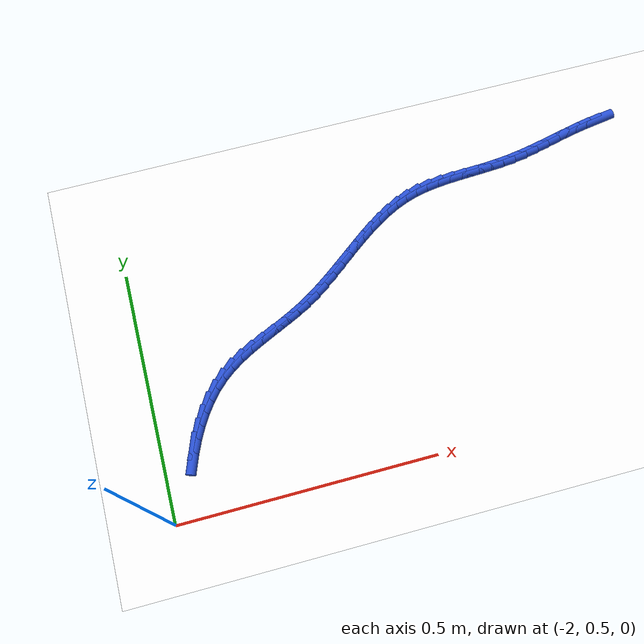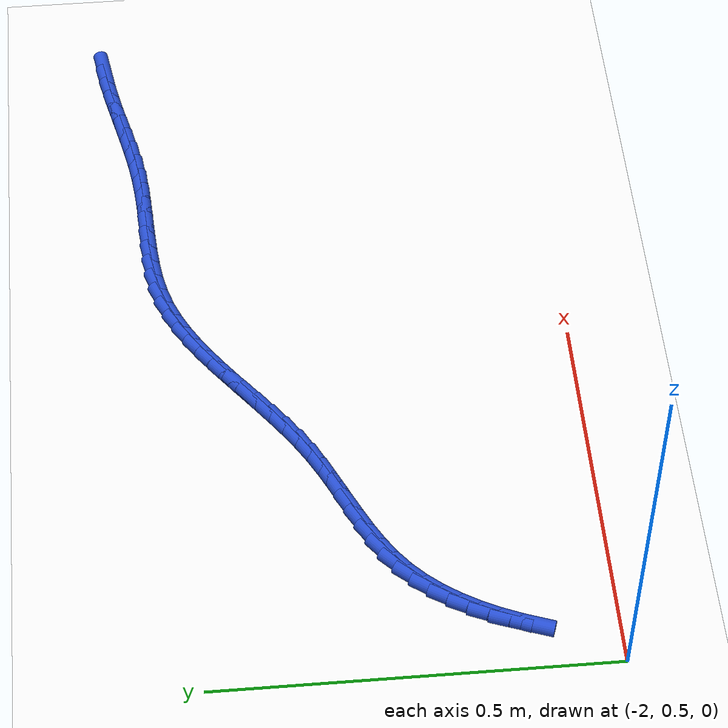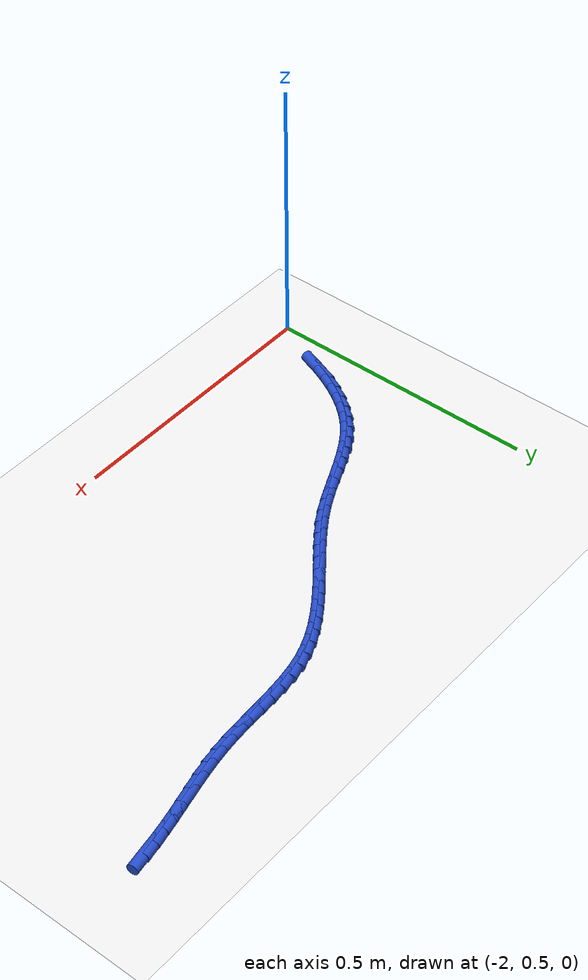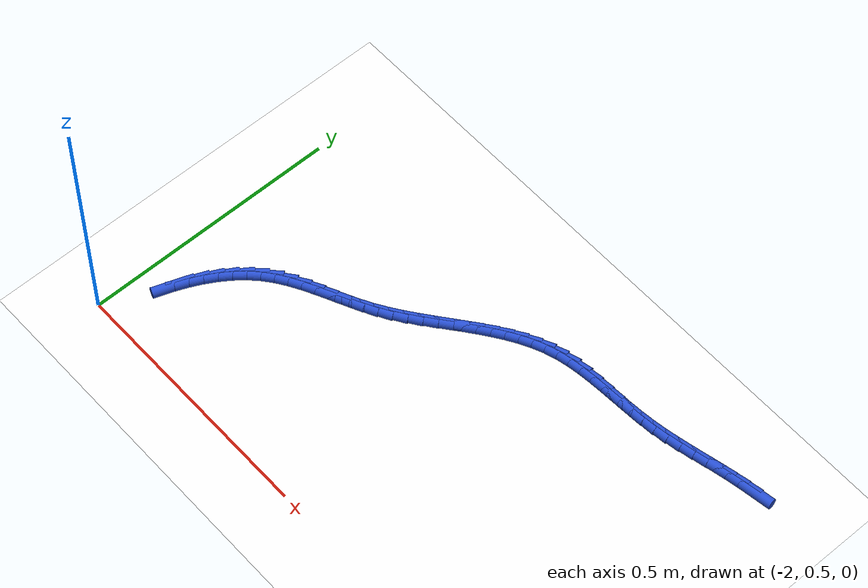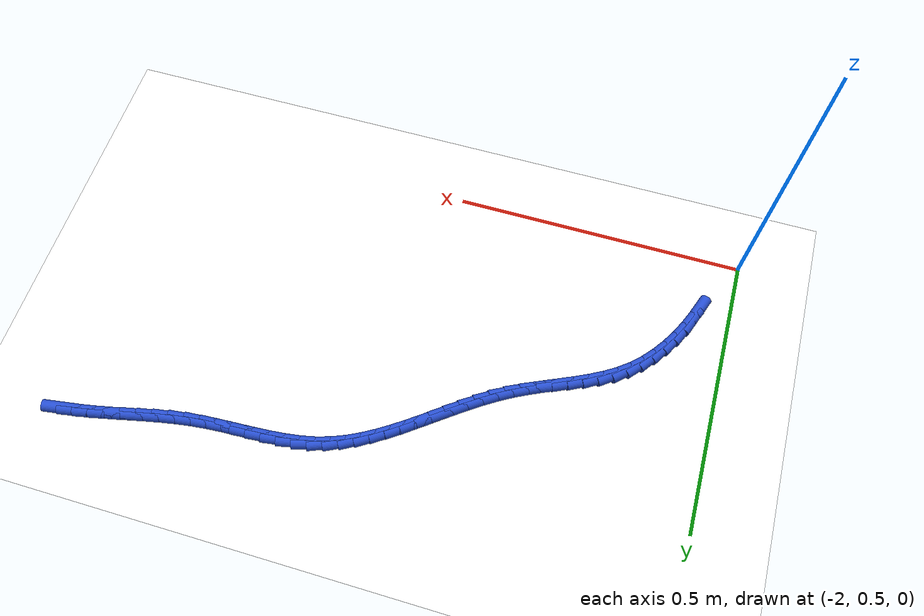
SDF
<sdf version="1.6">
 <world name="default">
  <model name="ground_plane">
   <static>1</static>
   <link name="link">
    <collision name="collision">
     <geometry><plane><normal>0 0 1</normal><size>100 100</size></plane></geometry>
     <surface><friction><ode><mu>100</mu><mu2>50</mu2></ode></friction></surface>
    </collision>
    <visual name="visual">
     <cast_shadows>0</cast_shadows>
     <geometry><plane><normal>0 0 1</normal><size>100 100</size></plane></geometry>
     <material>
      <script><uri>file://media/materials/scripts/gazebo.material</uri><name>Gazebo/WhiteGlow</name></script>
     </material>
    </visual>
   </link>
  </model>
  <model name="line">
   <link name="link_63">
    <pose>-0.9886689863616577 1.0856278593890523 0.01 0 1.57 0.15367585824851632</pose>
    <collision name="collision">
     <geometry><cylinder><radius>0.01</radius><length>0.08</length></cylinder></geometry>
    </collision>
    <visual name="visual">
     <material>
      <script><name>Gazebo/Blue</name><uri>file://media/materials/scripts/gazebo.material</uri></script>
     </material>
     <geometry><cylinder><radius>0.01</radius><length>0.08</length></cylinder></geometry>
    </visual>
   </link>
   <link name="link_64">
    <pose>-1.0137276543993818 1.0817463432120618 0.01 0 1.57 0.18965838416106814</pose>
    <collision name="collision">
     <geometry><cylinder><radius>0.01</radius><length>0.08</length></cylinder></geometry>
    </collision>
    <visual name="visual">
     <material>
      <script><name>Gazebo/Blue</name><uri>file://media/materials/scripts/gazebo.material</uri></script>
     </material>
     <geometry><cylinder><radius>0.01</radius><length>0.08</length></cylinder></geometry>
    </visual>
   </link>
   <link name="link_65">
    <pose>-1.0388682509993457 1.0769202132585929 0.01 0 1.57 0.21307552401293783</pose>
    <collision name="collision">
     <geometry><cylinder><radius>0.01</radius><length>0.08</length></cylinder></geometry>
    </collision>
    <visual name="visual">
     <material>
      <script><name>Gazebo/Blue</name><uri>file://media/materials/scripts/gazebo.material</uri></script>
     </material>
     <geometry><cylinder><radius>0.01</radius><length>0.08</length></cylinder></geometry>
    </visual>
   </link>
   <link name="link_66">
    <pose>-1.0641071666516015 1.0714595263205273 0.01 0 1.57 0.22433902805660094</pose>
    <collision name="collision">
     <geometry><cylinder><radius>0.01</radius><length>0.08</length></cylinder></geometry>
    </collision>
    <visual name="visual">
     <material>
      <script><name>Gazebo/Blue</name><uri>file://media/materials/scripts/gazebo.material</uri></script>
     </material>
     <geometry><cylinder><radius>0.01</radius><length>0.08</length></cylinder></geometry>
    </visual>
   </link>
   <link name="link_67">
    <pose>-1.089460791846201 1.0656743391897456 0.01 0 1.57 0.22376192650550664</pose>
    <collision name="collision">
     <geometry><cylinder><radius>0.01</radius><length>0.08</length></cylinder></geometry>
    </collision>
    <visual name="visual">
     <material>
      <script><name>Gazebo/Blue</name><uri>file://media/materials/scripts/gazebo.material</uri></script>
     </material>
     <geometry><cylinder><radius>0.01</radius><length>0.08</length></cylinder></geometry>
    </visual>
   </link>
   <link name="link_68">
    <pose>-1.1149455170731952 1.0598747086581295 0.01 0 1.57 0.211518502137762</pose>
    <collision name="collision">
     <geometry><cylinder><radius>0.01</radius><length>0.08</length></cylinder></geometry>
    </collision>
    <visual name="visual">
     <material>
      <script><name>Gazebo/Blue</name><uri>file://media/materials/scripts/gazebo.material</uri></script>
     </material>
     <geometry><cylinder><radius>0.01</radius><length>0.08</length></cylinder></geometry>
    </visual>
   </link>
   <link name="link_69">
    <pose>-1.1405777328226372 1.0543706915175606 0.01 0 1.57 0.18765301356978514</pose>
    <collision name="collision">
     <geometry><cylinder><radius>0.01</radius><length>0.08</length></cylinder></geometry>
    </collision>
    <visual name="visual">
     <material>
      <script><name>Gazebo/Blue</name><uri>file://media/materials/scripts/gazebo.material</uri></script>
     </material>
     <geometry><cylinder><radius>0.01</radius><length>0.08</length></cylinder></geometry>
    </visual>
   </link>
   <link name="link_70">
    <pose>-1.166373829584579 1.0494723445599194 0.01 0 1.57 0.15213241074228684</pose>
    <collision name="collision">
     <geometry><cylinder><radius>0.01</radius><length>0.08</length></cylinder></geometry>
    </collision>
    <visual name="visual">
     <material>
      <script><name>Gazebo/Blue</name><uri>file://media/materials/scripts/gazebo.material</uri></script>
     </material>
     <geometry><cylinder><radius>0.01</radius><length>0.08</length></cylinder></geometry>
    </visual>
   </link>
   <link name="link_71">
    <pose>-1.1923501978490714 1.0454897245770878 0.01 0 1.57 0.1079049714328012</pose>
    <collision name="collision">
     <geometry><cylinder><radius>0.01</radius><length>0.08</length></cylinder></geometry>
    </collision>
    <visual name="visual">
     <material>
      <script><name>Gazebo/Blue</name><uri>file://media/materials/scripts/gazebo.material</uri></script>
     </material>
     <geometry><cylinder><radius>0.01</radius><length>0.08</length></cylinder></geometry>
    </visual>
   </link>
   <link name="link_72">
    <pose>-1.2185085185624365 1.0426561054495969 0.01 0 1.57 0.07324347028816783</pose>
    <collision name="collision">
     <geometry><cylinder><radius>0.01</radius><length>0.08</length></cylinder></geometry>
    </collision>
    <visual name="visual">
     <material>
      <script><name>Gazebo/Blue</name><uri>file://media/materials/scripts/gazebo.material</uri></script>
     </material>
     <geometry><cylinder><radius>0.01</radius><length>0.08</length></cylinder></geometry>
    </visual>
   </link>
   <link name="link_73">
    <pose>-1.2447595108728253 1.0407299460798045 0.01 0 1.57 0.054923742806120716</pose>
    <collision name="collision">
     <geometry><cylinder><radius>0.01</radius><length>0.08</length></cylinder></geometry>
    </collision>
    <visual name="visual">
     <material>
      <script><name>Gazebo/Blue</name><uri>file://media/materials/scripts/gazebo.material</uri></script>
     </material>
     <geometry><cylinder><radius>0.01</radius><length>0.08</length></cylinder></geometry>
    </visual>
   </link>
   <link name="link_74">
    <pose>-1.2709791635264465 1.0392884148132384 0.01 0 1.57 0.05290040331994995</pose>
    <collision name="collision">
     <geometry><cylinder><radius>0.01</radius><length>0.08</length></cylinder></geometry>
    </collision>
    <visual name="visual">
     <material>
      <script><name>Gazebo/Blue</name><uri>file://media/materials/scripts/gazebo.material</uri></script>
     </material>
     <geometry><cylinder><radius>0.01</radius><length>0.08</length></cylinder></geometry>
    </visual>
   </link>
   <link name="link_75">
    <pose>-1.297043396070596 1.0379083187813771 0.01 0 1.57 0.06745120516986125</pose>
    <collision name="collision">
     <geometry><cylinder><radius>0.01</radius><length>0.08</length></cylinder></geometry>
    </collision>
    <visual name="visual">
     <material>
      <script><name>Gazebo/Blue</name><uri>file://media/materials/scripts/gazebo.material</uri></script>
     </material>
     <geometry><cylinder><radius>0.01</radius><length>0.08</length></cylinder></geometry>
    </visual>
   </link>
   <link name="link_76">
    <pose>-1.3228281280525702 1.0361664651157005 0.01 0 1.57 0.09922740249639352</pose>
    <collision name="collision">
     <geometry><cylinder><radius>0.01</radius><length>0.08</length></cylinder></geometry>
    </collision>
    <visual name="visual">
     <material>
      <script><name>Gazebo/Blue</name><uri>file://media/materials/scripts/gazebo.material</uri></script>
     </material>
     <geometry><cylinder><radius>0.01</radius><length>0.08</length></cylinder></geometry>
    </visual>
   </link>
   <link name="link_77">
    <pose>-1.348209279019667 1.033639660947689 0.01 0 1.57 0.1491624032200587</pose>
    <collision name="collision">
     <geometry><cylinder><radius>0.01</radius><length>0.08</length></cylinder></geometry>
    </collision>
    <visual name="visual">
     <material>
      <script><name>Gazebo/Blue</name><uri>file://media/materials/scripts/gazebo.material</uri></script>
     </material>
     <geometry><cylinder><radius>0.01</radius><length>0.08</length></cylinder></geometry>
    </visual>
   </link>
   <link name="link_78">
    <pose>-1.3730627685191836 1.0299047134088222 0.01 0 1.57 0.2182010310023056</pose>
    <collision name="collision">
     <geometry><cylinder><radius>0.01</radius><length>0.08</length></cylinder></geometry>
    </collision>
    <visual name="visual">
     <material>
      <script><name>Gazebo/Blue</name><uri>file://media/materials/scripts/gazebo.material</uri></script>
     </material>
     <geometry><cylinder><radius>0.01</radius><length>0.08</length></cylinder></geometry>
    </visual>
   </link>
   <link name="link_79">
    <pose>-1.3972645160984158 1.0245384296305797 0.01 0 1.57 0.3061666628904438</pose>
    <collision name="collision">
     <geometry><cylinder><radius>0.01</radius><length>0.08</length></cylinder></geometry>
    </collision>
    <visual name="visual">
     <material>
      <script><name>Gazebo/Blue</name><uri>file://media/materials/scripts/gazebo.material</uri></script>
     </material>
     <geometry><cylinder><radius>0.01</radius><length>0.08</length></cylinder></geometry>
    </visual>
   </link>
   <link name="link_80">
    <pose>-1.4206954127215776 1.0171317827779125 0.01 0 1.57 0.3976325856208113</pose>
    <collision name="collision">
     <geometry><cylinder><radius>0.01</radius><length>0.08</length></cylinder></geometry>
    </collision>
    <visual name="visual">
     <material>
      <script><name>Gazebo/Blue</name><uri>file://media/materials/scripts/gazebo.material</uri></script>
     </material>
     <geometry><cylinder><radius>0.01</radius><length>0.08</length></cylinder></geometry>
    </visual>
   </link>
   <link name="link_81">
    <pose>-1.4433552425680254 1.00761453177717 0.01 0 1.57 0.4761779655331505</pose>
    <collision name="collision">
     <geometry><cylinder><radius>0.01</radius><length>0.08</length></cylinder></geometry>
    </collision>
    <visual name="visual">
     <material>
      <script><name>Gazebo/Blue</name><uri>file://media/materials/scripts/gazebo.material</uri></script>
     </material>
     <geometry><cylinder><radius>0.01</radius><length>0.08</length></cylinder></geometry>
    </visual>
   </link>
   <link name="link_82">
    <pose>-1.4653652674944384 0.9962625857311855 0.01 0 1.57 0.5405191001670003</pose>
    <collision name="collision">
     <geometry><cylinder><radius>0.01</radius><length>0.08</length></cylinder></geometry>
    </collision>
    <visual name="visual">
     <material>
      <script><name>Gazebo/Blue</name><uri>file://media/materials/scripts/gazebo.material</uri></script>
     </material>
     <geometry><cylinder><radius>0.01</radius><length>0.08</length></cylinder></geometry>
    </visual>
   </link>
   <link name="link_83">
    <pose>-1.486852237741784 0.9833674928728098 0.01 0 1.57 0.5908283659232889</pose>
    <collision name="collision">
     <geometry><cylinder><radius>0.01</radius><length>0.08</length></cylinder></geometry>
    </collision>
    <visual name="visual">
     <material>
      <script><name>Gazebo/Blue</name><uri>file://media/materials/scripts/gazebo.material</uri></script>
     </material>
     <geometry><cylinder><radius>0.01</radius><length>0.08</length></cylinder></geometry>
    </visual>
   </link>
   <link name="link_84">
    <pose>-1.507942903551028 0.9692208014348933 0.01 0 1.57 0.6276681106211144</pose>
    <collision name="collision">
     <geometry><cylinder><radius>0.01</radius><length>0.08</length></cylinder></geometry>
    </collision>
    <visual name="visual">
     <material>
      <script><name>Gazebo/Blue</name><uri>file://media/materials/scripts/gazebo.material</uri></script>
     </material>
     <geometry><cylinder><radius>0.01</radius><length>0.08</length></cylinder></geometry>
    </visual>
   </link>
   <link name="link_85">
    <pose>-1.5287640151631385 0.9541140596502871 0.01 0 1.57 0.6516988729561827</pose>
    <collision name="collision">
     <geometry><cylinder><radius>0.01</radius><length>0.08</length></cylinder></geometry>
    </collision>
    <visual name="visual">
     <material>
      <script><name>Gazebo/Blue</name><uri>file://media/materials/scripts/gazebo.material</uri></script>
     </material>
     <geometry><cylinder><radius>0.01</radius><length>0.08</length></cylinder></geometry>
    </visual>
   </link>
   <link name="link_86">
    <pose>-1.5494423228190826 0.9383388157518411 0.01 0 1.57 0.6634978108073455</pose>
    <collision name="collision">
     <geometry><cylinder><radius>0.01</radius><length>0.08</length></cylinder></geometry>
    </collision>
    <visual name="visual">
     <material>
      <script><name>Gazebo/Blue</name><uri>file://media/materials/scripts/gazebo.material</uri></script>
     </material>
     <geometry><cylinder><radius>0.01</radius><length>0.08</length></cylinder></geometry>
    </visual>
   </link>
   <link name="link_87">
    <pose>-1.5701045767598267 0.922186617972407 0.01 0 1.57 0.6634640879437452</pose>
    <collision name="collision">
     <geometry><cylinder><radius>0.01</radius><length>0.08</length></cylinder></geometry>
    </collision>
    <visual name="visual">
     <material>
      <script><name>Gazebo/Blue</name><uri>file://media/materials/scripts/gazebo.material</uri></script>
     </material>
     <geometry><cylinder><radius>0.01</radius><length>0.08</length></cylinder></geometry>
    </visual>
   </link>
   <link name="link_88">
    <pose>-1.5908775272263376 0.9059490145448348 0.01 0 1.57 0.651785201450929</pose>
    <collision name="collision">
     <geometry><cylinder><radius>0.01</radius><length>0.08</length></cylinder></geometry>
    </collision>
    <visual name="visual">
     <material>
      <script><name>Gazebo/Blue</name><uri>file://media/materials/scripts/gazebo.material</uri></script>
     </material>
     <geometry><cylinder><radius>0.01</radius><length>0.08</length></cylinder></geometry>
    </visual>
   </link>
   <link name="link_89">
    <pose>-1.611887924459583 0.8899175537019753 0.01 0 1.57 0.6284476862837596</pose>
    <collision name="collision">
     <geometry><cylinder><radius>0.01</radius><length>0.08</length></cylinder></geometry>
    </collision>
    <visual name="visual">
     <material>
      <script><name>Gazebo/Blue</name><uri>file://media/materials/scripts/gazebo.material</uri></script>
     </material>
     <geometry><cylinder><radius>0.01</radius><length>0.08</length></cylinder></geometry>
    </visual>
   </link>
   <link name="link_90">
    <pose>-1.6332625187005296 0.8743837836766796 0.01 0 1.57 0.5932873660200614</pose>
    <collision name="collision">
     <geometry><cylinder><radius>0.01</radius><length>0.08</length></cylinder></geometry>
    </collision>
    <visual name="visual">
     <material>
      <script><name>Gazebo/Blue</name><uri>file://media/materials/scripts/gazebo.material</uri></script>
     </material>
     <geometry><cylinder><radius>0.01</radius><length>0.08</length></cylinder></geometry>
    </visual>
   </link>
   <link name="link_91">
    <pose>-1.6551280601901444 0.8596392527017973 0.01 0 1.57 0.546084947585971</pose>
    <collision name="collision">
     <geometry><cylinder><radius>0.01</radius><length>0.08</length></cylinder></geometry>
    </collision>
    <visual name="visual">
     <material>
      <script><name>Gazebo/Blue</name><uri>file://media/materials/scripts/gazebo.material</uri></script>
     </material>
     <geometry><cylinder><radius>0.01</radius><length>0.08</length></cylinder></geometry>
    </visual>
   </link>
   <link name="link_92">
    <pose>-1.6776112877994382 0.8459754899380926 0.01 0 1.57 0.4930516026923542</pose>
    <collision name="collision">
     <geometry><cylinder><radius>0.01</radius><length>0.08</length></cylinder></geometry>
    </collision>
    <visual name="visual">
     <material>
      <script><name>Gazebo/Blue</name><uri>file://media/materials/scripts/gazebo.material</uri></script>
     </material>
     <geometry><cylinder><radius>0.01</radius><length>0.08</length></cylinder></geometry>
    </visual>
   </link>
   <link name="link_93">
    <pose>-1.7007535639008697 0.8335408130822233 0.01 0 1.57 0.4557702892260531</pose>
    <collision name="collision">
     <geometry><cylinder><radius>0.01</radius><length>0.08</length></cylinder></geometry>
    </collision>
    <visual name="visual">
     <material>
      <script><name>Gazebo/Blue</name><uri>file://media/materials/scripts/gazebo.material</uri></script>
     </material>
     <geometry><cylinder><radius>0.01</radius><length>0.08</length></cylinder></geometry>
    </visual>
   </link>
   <link name="link_94">
    <pose>-1.7243055075935925 0.8219958439127074 0.01 0 1.57 0.43876072770193575</pose>
    <collision name="collision">
     <geometry><cylinder><radius>0.01</radius><length>0.08</length></cylinder></geometry>
    </collision>
    <visual name="visual">
     <material>
      <script><name>Gazebo/Blue</name><uri>file://media/materials/scripts/gazebo.material</uri></script>
     </material>
     <geometry><cylinder><radius>0.01</radius><length>0.08</length></cylinder></geometry>
    </visual>
   </link>
   <link name="link_95">
    <pose>-1.747955903516014 0.8108974824133585 0.01 0 1.57 0.4421238930367561</pose>
    <collision name="collision">
     <geometry><cylinder><radius>0.01</radius><length>0.08</length></cylinder></geometry>
    </collision>
    <visual name="visual">
     <material>
      <script><name>Gazebo/Blue</name><uri>file://media/materials/scripts/gazebo.material</uri></script>
     </material>
     <geometry><cylinder><radius>0.01</radius><length>0.08</length></cylinder></geometry>
    </visual>
   </link>
   <link name="link_96">
    <pose>-1.771393536306541 0.7998026285679886 0.01 0 1.57 0.46635390241290103</pose>
    <collision name="collision">
     <geometry><cylinder><radius>0.01</radius><length>0.08</length></cylinder></geometry>
    </collision>
    <visual name="visual">
     <material>
      <script><name>Gazebo/Blue</name><uri>file://media/materials/scripts/gazebo.material</uri></script>
     </material>
     <geometry><cylinder><radius>0.01</radius><length>0.08</length></cylinder></geometry>
    </visual>
   </link>
   <link name="link_97">
    <pose>-1.7943071906035812 0.7882681823604107 0.01 0 1.57 0.5123208023710797</pose>
    <collision name="collision">
     <geometry><cylinder><radius>0.01</radius><length>0.08</length></cylinder></geometry>
    </collision>
    <visual name="visual">
     <material>
      <script><name>Gazebo/Blue</name><uri>file://media/materials/scripts/gazebo.material</uri></script>
     </material>
     <geometry><cylinder><radius>0.01</radius><length>0.08</length></cylinder></geometry>
    </visual>
   </link>
   <link name="link_98">
    <pose>-1.8163856510455432 0.7758510437744379 0.01 0 1.57 0.5809657754683697</pose>
    <collision name="collision">
     <geometry><cylinder><radius>0.01</radius><length>0.08</length></cylinder></geometry>
    </collision>
    <visual name="visual">
     <material>
      <script><name>Gazebo/Blue</name><uri>file://media/materials/scripts/gazebo.material</uri></script>
     </material>
     <geometry><cylinder><radius>0.01</radius><length>0.08</length></cylinder></geometry>
    </visual>
   </link>
   <link name="link_99">
    <pose>-1.837317702270833 0.762108112793882 0.01 0 1.57 0.672583723882045</pose>
    <collision name="collision">
     <geometry><cylinder><radius>0.01</radius><length>0.08</length></cylinder></geometry>
    </collision>
    <visual name="visual">
     <material>
      <script><name>Gazebo/Blue</name><uri>file://media/materials/scripts/gazebo.material</uri></script>
     </material>
     <geometry><cylinder><radius>0.01</radius><length>0.08</length></cylinder></geometry>
    </visual>
   </link>
   <link name="link_100">
    <pose>-1.856792540118604 0.7465970227461182 0.01 0 1.57 0.7776213037723233</pose>
    <collision name="collision">
     <geometry><cylinder><radius>0.01</radius><length>0.08</length></cylinder></geometry>
    </collision>
    <visual name="visual">
     <material>
      <script><name>Gazebo/Blue</name><uri>file://media/materials/scripts/gazebo.material</uri></script>
     </material>
     <geometry><cylinder><radius>0.01</radius><length>0.08</length></cylinder></geometry>
    </visual>
   </link>
   <link name="link_101">
    <pose>-1.8746034370391107 0.7290610192501658 0.01 0 1.57 0.8752987632665221</pose>
    <collision name="collision">
     <geometry><cylinder><radius>0.01</radius><length>0.08</length></cylinder></geometry>
    </collision>
    <visual name="visual">
     <material>
      <script><name>Gazebo/Blue</name><uri>file://media/materials/scripts/gazebo.material</uri></script>
     </material>
     <geometry><cylinder><radius>0.01</radius><length>0.08</length></cylinder></geometry>
    </visual>
   </link>
   <link name="link_102">
    <pose>-1.8907847808793155 0.7096733579038443 0.01 0 1.57 0.9627434367298014</pose>
    <collision name="collision">
     <geometry><cylinder><radius>0.01</radius><length>0.08</length></cylinder></geometry>
    </collision>
    <visual name="visual">
     <material>
      <script><name>Gazebo/Blue</name><uri>file://media/materials/scripts/gazebo.material</uri></script>
     </material>
     <geometry><cylinder><radius>0.01</radius><length>0.08</length></cylinder></geometry>
    </visual>
   </link>
   <link name="link_103">
    <pose>-1.9054050105556193 0.6886680216573043 0.01 0 1.57 1.040482440580423</pose>
    <collision name="collision">
     <geometry><cylinder><radius>0.01</radius><length>0.08</length></cylinder></geometry>
    </collision>
    <visual name="visual">
     <material>
      <script><name>Gazebo/Blue</name><uri>file://media/materials/scripts/gazebo.material</uri></script>
     </material>
     <geometry><cylinder><radius>0.01</radius><length>0.08</length></cylinder></geometry>
    </visual>
   </link>
   <link name="link_104">
    <pose>-1.9185325649844231 0.6662789934606955 0.01 0 1.57 1.1093960637913847</pose>
    <collision name="collision">
     <geometry><cylinder><radius>0.01</radius><length>0.08</length></cylinder></geometry>
    </collision>
    <visual name="visual">
     <material>
      <script><name>Gazebo/Blue</name><uri>file://media/materials/scripts/gazebo.material</uri></script>
     </material>
     <geometry><cylinder><radius>0.01</radius><length>0.08</length></cylinder></geometry>
    </visual>
   </link>
   <link name="link_105">
    <pose>-1.930235883082129 0.6427402562641672 0.01 0 1.57 1.1705070569486047</pose>
    <collision name="collision">
     <geometry><cylinder><radius>0.01</radius><length>0.08</length></cylinder></geometry>
    </collision>
    <visual name="visual">
     <material>
      <script><name>Gazebo/Blue</name><uri>file://media/materials/scripts/gazebo.material</uri></script>
     </material>
     <geometry><cylinder><radius>0.01</radius><length>0.08</length></cylinder></geometry>
    </visual>
   </link>
   <link name="link_106">
    <pose>-1.9405834037651377 0.6182857930178695 0.01 0 1.57 1.224848889300089</pose>
    <collision name="collision">
     <geometry><cylinder><radius>0.01</radius><length>0.08</length></cylinder></geometry>
    </collision>
    <visual name="visual">
     <material>
      <script><name>Gazebo/Blue</name><uri>file://media/materials/scripts/gazebo.material</uri></script>
     </material>
     <geometry><cylinder><radius>0.01</radius><length>0.08</length></cylinder></geometry>
    </visual>
   </link>
  </model>
 </world>
</sdf>
